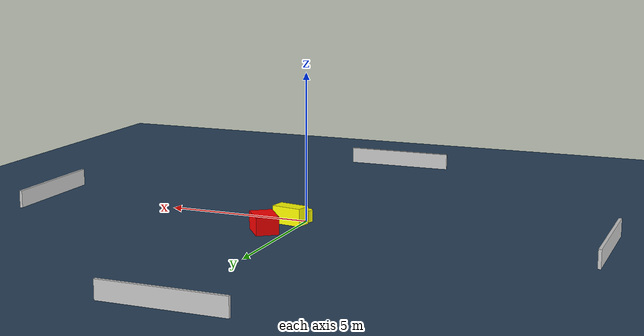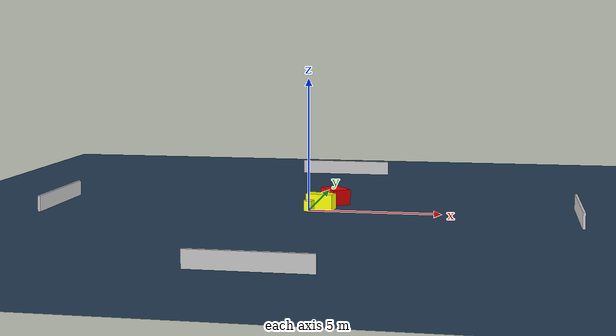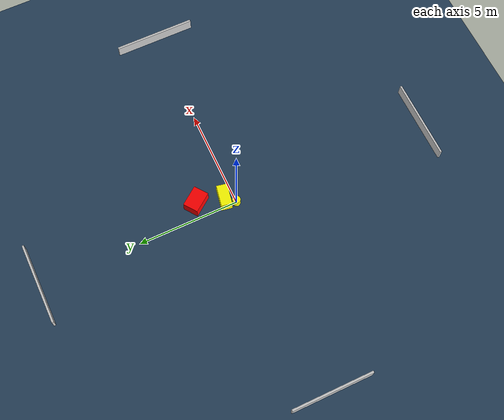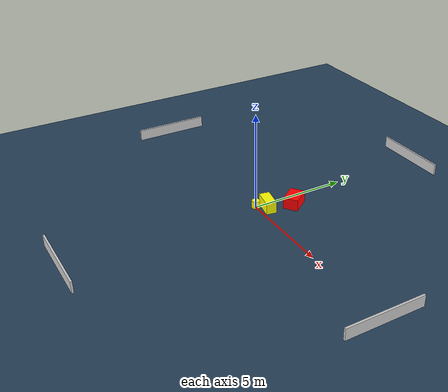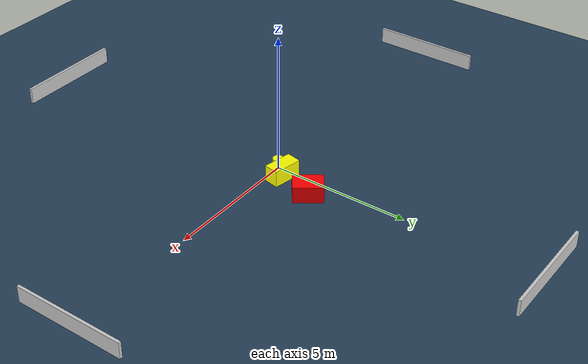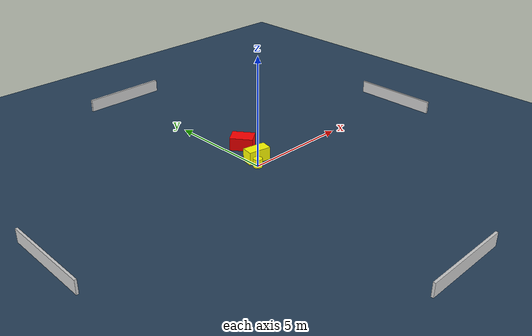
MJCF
<?xml version="1.0" ?>
<mujoco model="generated_environment">
  <option timestep="0.01" integrator="RK4" cone="elliptic"/>
  <default>
    <geom density="1"/>
  </default>
  <asset>
    <texture builtin="gradient" height="3072" name="skybox" rgb1="0.3 0.5 0.7" rgb2="0 0 0" type="skybox" width="512"/>
    <texture builtin="checker" height="300" name="groundplane" rgb1="0.2 0.3 0.4" rgb2="0.1 0.2 0.3" type="2d" width="300"/>
    <material name="groundplane" reflectance="0.2" texrepeat="5 5" texture="groundplane"/>
  </asset>
  <worldbody>
    <light dir="0 0 -1" directional="true" pos="0 0 1.5"/>
    <geom condim="3" friction="0.5 0.005 0.001" material="groundplane" name="floor" pos="0 0 0" size="0 0 0.05" type="plane"/>
    <body name="walls">
      <geom name="wall_1" condim="4" pos="-10.0 0.0 0.3" rgba="0.800000011920929 0.800000011920929 0.800000011920929 1.0" size="0.05 2.0 0.3" type="box"/>
      <geom name="wall_2" condim="4" pos="10.0 0.0 0.3" rgba="0.800000011920929 0.800000011920929 0.800000011920929 1.0" size="0.05 2.0 0.3" type="box"/>
      <geom name="wall_3" condim="4" pos="0.0 -10.0 0.3" rgba="0.800000011920929 0.800000011920929 0.800000011920929 1.0" size="2.0 0.05 0.3" type="box"/>
      <geom name="wall_4" condim="4" pos="0.0 10.0 0.3" rgba="0.800000011920929 0.800000011920929 0.800000011920929 1.0" size="2.0 0.05 0.3" type="box"/>
    </body>
    <body name="robot">
      <joint name="joint_x" type="slide" pos="0 0 0" axis="1 0 0"/>
      <joint name="joint_y" type="slide" pos="0 0 0" axis="0 1 0"/>
      <geom name="robot" type="cylinder" pos="0.0 0.0 0.2" size="0.2 0.2 0.0" mass="5.0" friction="1.0 0.005 0.0001" condim="4" rgba="1.0 1.0 0.0 1.0"/>
    </body>
    <body name="obstacle_1_movable">
      <geom name="obstacle_1_movable" condim="4" pos="0.3878509092374757 0.4600062414972392 0.3" euler="0 0 79.18219735007668" friction="0.0 0.005 0.001" rgba="1.0 1.0 0.0 1.0" size="0.2677051243997801 0.5295563406110262 0.3" type="box" mass="0.1"/>
      <joint type="free"/>
    </body>
    <body name="obstacle_2_static">
      <geom name="obstacle_2_static" condim="4" pos="0.7572316669994993 1.772521702067899 0.3" euler="0 0 36.548185368083224" friction="0.0 0.005 0.001" rgba="1.0 0.0 0.0 1.0" size="0.3776481245210238 0.5275178903554691 0.3" type="box"/>
    </body>
  </worldbody>
  <actuator>
    <motor name="actuator_x" joint="joint_x" gear="1" ctrlrange="-1 1"/>
    <motor name="actuator_y" joint="joint_y" gear="1" ctrlrange="-1 1"/>
  </actuator>
</mujoco>
